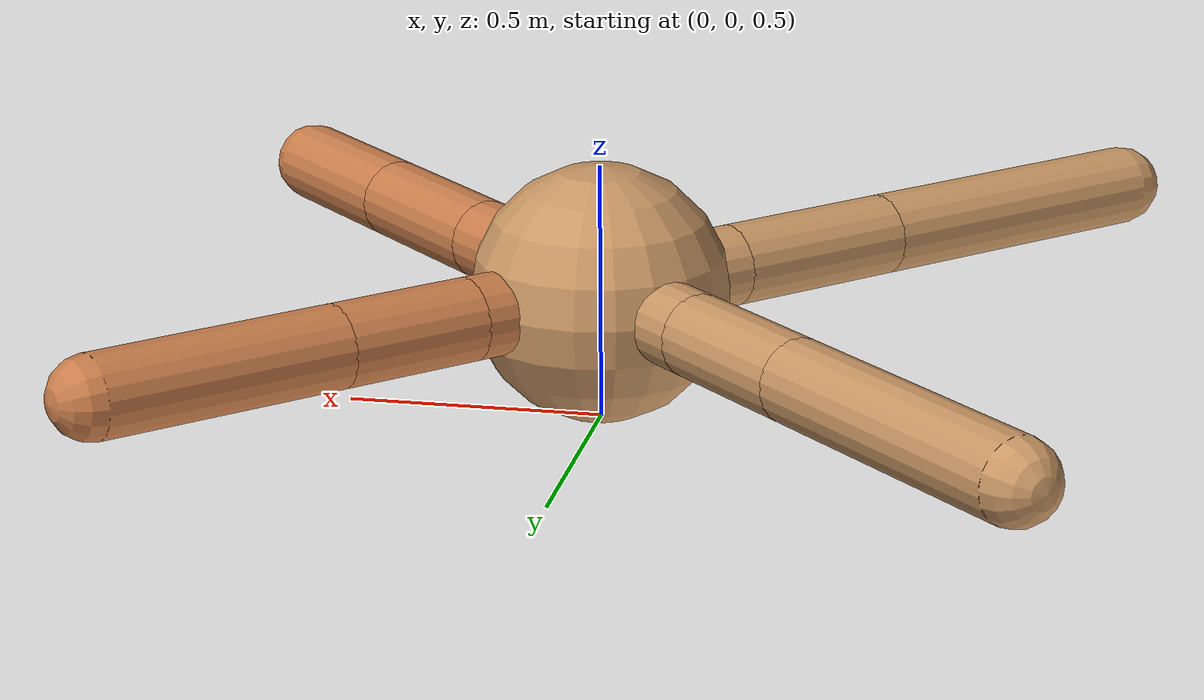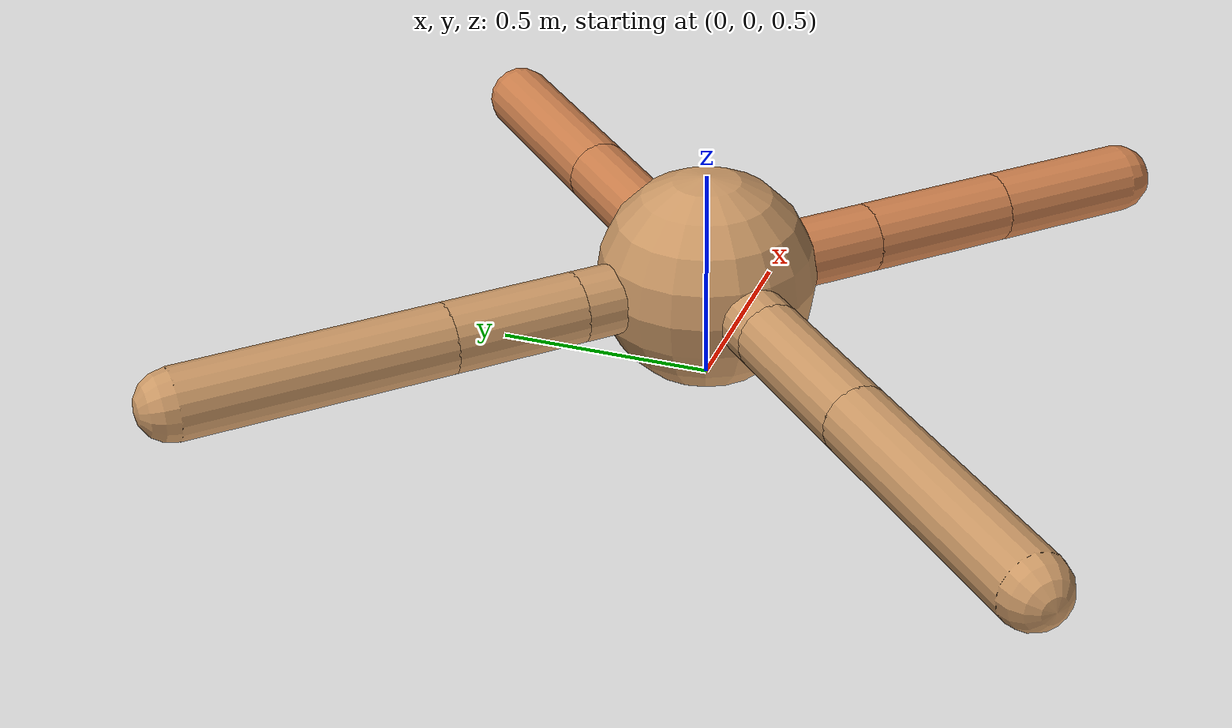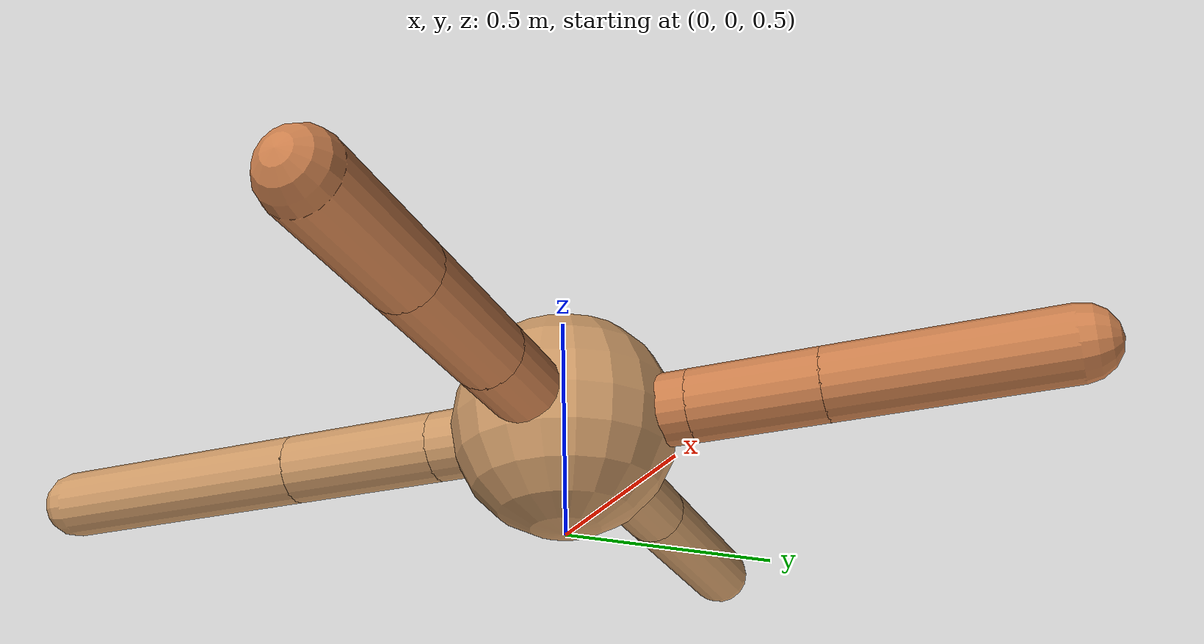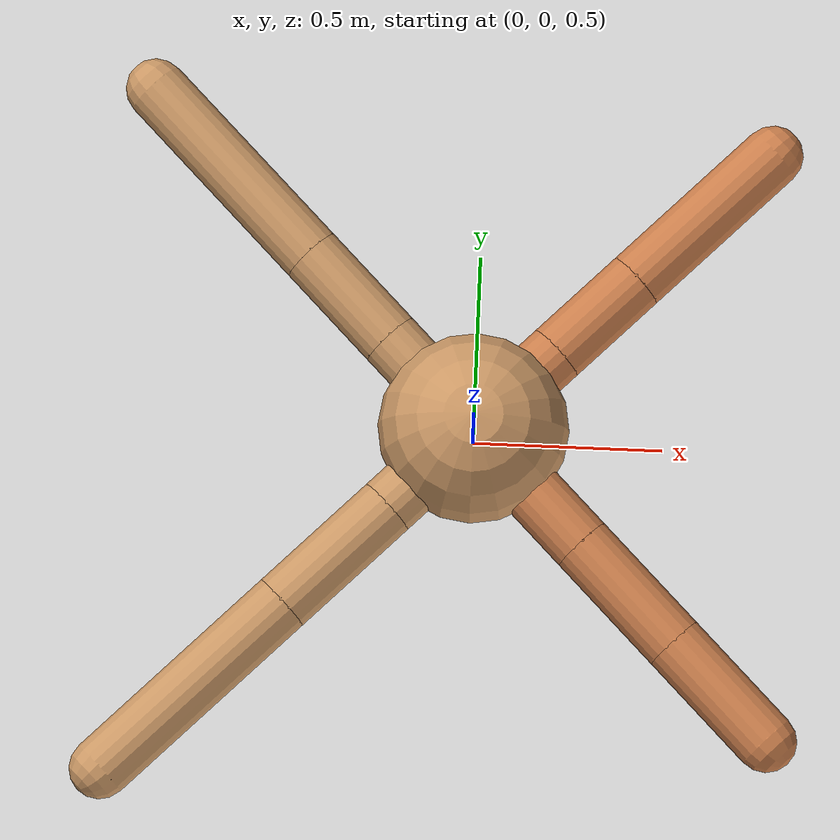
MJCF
<mujoco model="ant">
  <compiler angle="degree" coordinate="local" inertiafromgeom="true" />
  <option integrator="RK4" timestep="0.01" />
  <custom>
    <numeric data="0.0 0.0 0.55 1.0 0.0 0.0 0.0 0.0 1.0 0.0 -1.0 0.0 -1.0 0.0 1.0" name="init_qpos" />
  </custom>
  <default>
    <joint armature="1" damping="1" limited="true" />
    <geom conaffinity="0" condim="3" density="5.0" friction="1.5 0.1 0.1" margin="0.01" rgba="0.8 0.6 0.4 1" />
  </default>
  <worldbody>
    <body name="torso" pos="0 0 0.75">
      <geom name="torso_geom" pos="0 0 0" size="0.25" type="sphere" />

      <body name="front_left_leg" pos="0 0 0">
        <geom fromto="0.0 0.0 0.0 0.20796421145282473 0.20796421145282473 0.0" name="aux_1_geom" size="0.08" type="capsule" rgba=".8 .5 .3 1" />
        <body name="aux_1" pos="0.20796421145282473 0.20796421145282473 0.0">
          <joint axis="0 0 1" name="hip_1" pos="0.0 0.0 0.0" range="-40 40" type="hinge" />
          <geom fromto="0.0 0.0 0.0 0.1996934710213311 0.1996934710213311 0.0" name="left_leg_geom" size="0.08" type="capsule" rgba=".8 .5 .3 1" />
          <body pos="0.1996934710213311 0.1996934710213311 0.0" name="front_left_foot">
            <joint axis="-1 1 0" name="ankle_1" pos="0.0 0.0 0.0" range="30 100" type="hinge" />
            <geom fromto="0.0 0.0 0.0 0.34849502942141775 0.34849502942141775 0.0" name="left_ankle_geom" size="0.08" type="capsule" rgba=".8 .5 .3 1" />
          </body>
        </body>
      </body>
      <body name="front_right_leg" pos="0 0 0">
        <geom fromto="0.0 0.0 0.0 -0.22645090644283983 0.22645090644283983 0.0" name="aux_2_geom" size="0.08" type="capsule" />
        <body name="aux_2" pos="-0.22645090644283983 0.22645090644283983 0.0">
          <joint axis="0 0 1" name="hip_2" pos="0.0 0.0 0.0" range="-40 40" type="hinge" />
          <geom fromto="0.0 0.0 0.0 -0.21525348623325313 0.21525348623325313 0.0" name="right_leg_geom" size="0.08" type="capsule" />
          <body pos="-0.21525348623325313 0.21525348623325313 0.0" name="front_right_foot">
            <joint axis="1 1 0" name="ankle_2" pos="0.0 0.0 0.0" range="-100 -30" type="hinge" />
            <geom fromto="0.0 0.0 0.0 -0.4276986029925053 0.4276986029925053 0.0" name="right_ankle_geom" size="0.08" type="capsule" />
          </body>
        </body>
      </body>
      <body name="left_back_leg" pos="0 0 0">
        <geom fromto="0.0 0.0 0.0 -0.21600619865502751 -0.21600619865502751 0.0" name="aux_3_geom" size="0.08" type="capsule" />
        <body name="aux_3" pos="-0.21600619865502751 -0.21600619865502751 0.0">
          <joint axis="0 0 1" name="hip_3" pos="0.0 0.0 0.0" range="-40 40" type="hinge" />
          <geom fromto="0.0 0.0 0.0 -0.2623320008153577 -0.2623320008153577 0.0" name="back_leg_geom" size="0.08" type="capsule" />
          <body pos="-0.2623320008153577 -0.2623320008153577 0.0" name="left_back_foot">
            <joint axis="-1 1 0" name="ankle_3" pos="0.0 0.0 0.0" range="-100 -30" type="hinge" />
            <geom fromto="0.0 0.0 0.0 -0.4504418892826063 -0.4504418892826063 0.0" name="third_ankle_geom" size="0.08" type="capsule" />
          </body>
        </body>
      </body>
      <body name="right_back_leg" pos="0 0 0">
        <geom fromto="0.0 0.0 0.0 0.293735733429458 -0.293735733429458 0.0" name="aux_4_geom" size="0.08" type="capsule" rgba=".8 .5 .3 1" />
        <body name="aux_4" pos="0.293735733429458 -0.293735733429458 0.0">
          <joint axis="0 0 1" name="hip_4" pos="0.0 0.0 0.0" range="-40 40" type="hinge" />
          <geom fromto="0.0 0.0 0.0 0.24850229875074392 -0.24850229875074392 0.0" name="rightback_leg_geom" size="0.08" type="capsule" rgba=".8 .5 .3 1" />
          <body pos="0.24850229875074392 -0.24850229875074392 0.0" name="right_back_foot">
            <joint axis="1 1 0" name="ankle_4" pos="0.0 0.0 0.0" range="30 100" type="hinge" />
            <geom fromto="0.0 0.0 0.0 0.2470421003098091 -0.2470421003098091 0.0" name="fourth_ankle_geom" size="0.08" type="capsule" rgba=".8 .5 .3 1" />
          </body>
        </body>
      </body>
    </body>
  </worldbody>
  <actuator>
    <motor ctrllimited="true" ctrlrange="-1.0 1.0" joint="hip_4" gear="150" />
    <motor ctrllimited="true" ctrlrange="-1.0 1.0" joint="ankle_4" gear="150" />
    <motor ctrllimited="true" ctrlrange="-1.0 1.0" joint="hip_1" gear="150" />
    <motor ctrllimited="true" ctrlrange="-1.0 1.0" joint="ankle_1" gear="150" />
    <motor ctrllimited="true" ctrlrange="-1.0 1.0" joint="hip_2" gear="150" />
    <motor ctrllimited="true" ctrlrange="-1.0 1.0" joint="ankle_2" gear="150" />
    <motor ctrllimited="true" ctrlrange="-1.0 1.0" joint="hip_3" gear="150" />
    <motor ctrllimited="true" ctrlrange="-1.0 1.0" joint="ankle_3" gear="150" />
  </actuator>
</mujoco>
